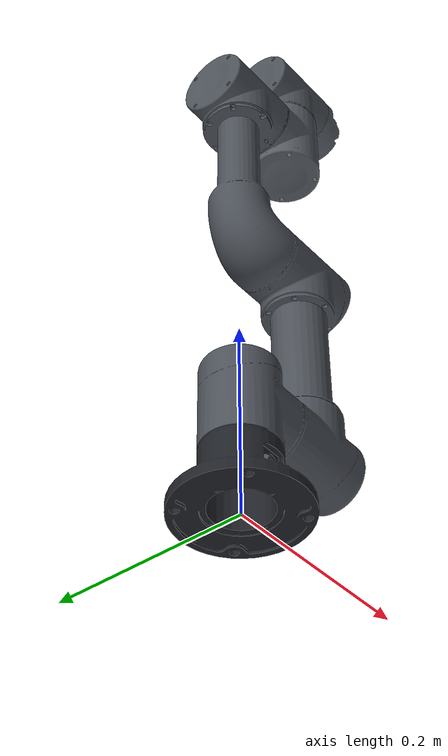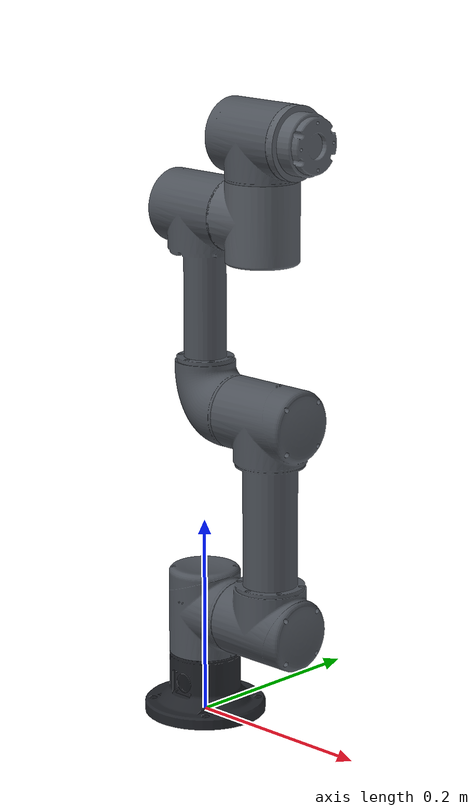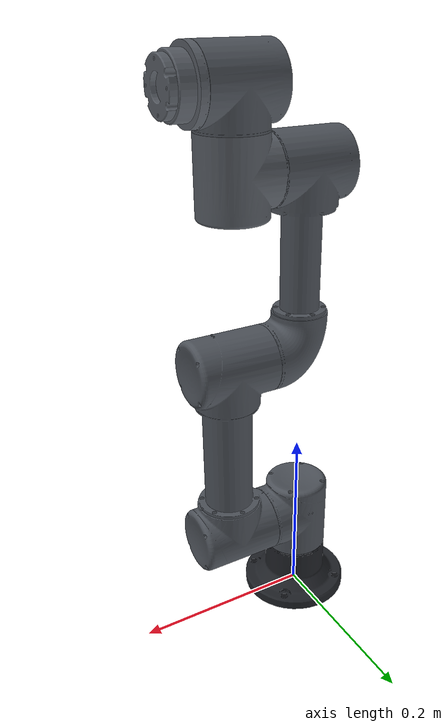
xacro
<?xml version="1.0"?>
<robot xmlns:xacro="http://www.ros.org/wiki/xacro" name="robot_arm">
    <xacro:arg name="initial_positions_file" default="initial_positions.yaml" />
    <xacro:arg name="use_fake_hardware" default="true" />
    <xacro:arg name="backend_mode" default="fake" />
    <xacro:arg name="joint_mapping_path" default="" />
    <xacro:arg name="auto_enable_on_activate" default="false" />
    <xacro:arg name="auto_enable_delay_sec" default="1.0" />

    <xacro:include filename="robot_arm.runtime.urdf" />

    <!-- Import control_xacro -->
    <xacro:include filename="robot_arm.ros2_control.xacro" />

    <xacro:robot_arm_ros2_control
      name="RobotArmSystem"
      initial_positions_file="$(arg initial_positions_file)"
      use_fake_hardware="$(arg use_fake_hardware)"
      backend_mode="$(arg backend_mode)"
      joint_mapping_path="$(arg joint_mapping_path)"
      auto_enable_on_activate="$(arg auto_enable_on_activate)"
      auto_enable_delay_sec="$(arg auto_enable_delay_sec)"/>

</robot>

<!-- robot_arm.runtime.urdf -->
<robot name="robot_arm">
    <link name="world" />
    <joint name="fixed" type="fixed">
        <parent link="world" />
        <child link="base_link" />
    </joint>
    <link name="base_link">
        <inertial>
            <origin xyz="-0.000379135468760089 0.00044051065817062 0.025023985175857" rpy="0 0 0" />
            <mass value="0.195490498054091" />
            <inertia ixx="0.000197098942378015" ixy="1.73544380326031E-08" ixz="-1.8002259724736E-07" iyy="0.00020115978920217" iyz="-2.1699799937825E-06" izz="0.000316589137651227" />
        </inertial>
        <visual>
            <origin xyz="0 0 0" rpy="0 0 0" />
            <geometry>
                <mesh filename="package://robot_arm_description_4338/meshes/base_link.STL" />
            </geometry>
            <material name="base_dark">
                <color rgba="0.13 0.14 0.16 1.0" />
            </material>
        </visual>
        <collision>
            <origin xyz="0 0 0" rpy="0 0 0" />
            <geometry>
                <mesh filename="package://robot_arm_description_4338/meshes/base_link.STL" />
            </geometry>
        </collision>
    </link>
    <link name="link_1">
        <inertial>
            <origin xyz="0.00458971266849917 -3.20046849174062E-05 0.0425574520928825" rpy="0 0 0" />
            <mass value="0.31284736542166" />
            <inertia ixx="0.000154646806877315" ixy="4.09236809944852E-09" ixz="-8.1373895526861E-06" iyy="0.000137640315457541" iyz="-1.10068804835806E-08" izz="0.000167440749331112" />
        </inertial>
        <visual>
            <origin xyz="0 0 0" rpy="0 0 0" />
            <geometry>
                <mesh filename="package://robot_arm_description_4338/meshes/link_1.STL" />
            </geometry>
            <material name="gunmetal_main">
                <color rgba="0.31 0.33 0.36 1.0" />
            </material>
        </visual>
        <collision>
            <origin xyz="0 0 0" rpy="0 0 0" />
            <geometry>
                <mesh filename="package://robot_arm_description_4338/meshes/link_1.STL" />
            </geometry>
        </collision>
    </link>
    <joint name="joint_1" type="revolute">
        <origin xyz="0 0 0.063" rpy="0 0 0" />
        <parent link="base_link" />
        <child link="link_1" />
        <axis xyz="0 0 -1" />
        <limit lower="-3.14" upper="3.14" effort="100" velocity="100" />
    </joint>
    <link name="link_2">
        <inertial>
            <origin xyz="0.0437291888718274 -3.17241634150665E-05 0.121342621403178" rpy="0 0 0" />
            <mass value="0.587907106128444" />
            <inertia ixx="0.000432111071621861" ixy="3.77302870663473E-09" ixz="-5.21839747889797E-10" iyy="0.000377843479563513" iyz="-1.33160548801769E-08" izz="0.000325262257620724" />
        </inertial>
        <visual>
            <origin xyz="0 0 0" rpy="0 0 0" />
            <geometry>
                <mesh filename="package://robot_arm_description_4338/meshes/link_2.STL" />
            </geometry>
            <material name="gunmetal_main">
                <color rgba="0.31 0.33 0.36 1.0" />
            </material>
        </visual>
        <collision>
            <origin xyz="0 0 0" rpy="0 0 0" />
            <geometry>
                <mesh filename="package://robot_arm_description_4338/meshes/link_2.STL" />
            </geometry>
        </collision>
    </link>
    <joint name="joint_2" type="revolute">
        <origin xyz="0.044 0 0.0465" rpy="0 0 0" />
        <parent link="link_1" />
        <child link="link_2" />
        <axis xyz="-1 0 0" />
        <limit lower="-1.6" upper="1.6" effort="100" velocity="100" />
    </joint>
    <link name="link_3">
        <inertial>
            <origin xyz="-0.0342625302290131 -8.54393827617872E-07 0.130570556496791" rpy="0 0 0" />
            <mass value="0.368301492556341" />
            <inertia ixx="0.000284350975876608" ixy="1.99589868481762E-09" ixz="2.06902979779557E-06" iyy="0.000231576501898137" iyz="-3.41441474085351E-08" izz="0.00020347402203542" />
        </inertial>
        <visual>
            <origin xyz="0 0 0" rpy="0 0 0" />
            <geometry>
                <mesh filename="package://robot_arm_description_4338/meshes/link_3.STL" />
            </geometry>
            <material name="gunmetal_main">
                <color rgba="0.31 0.33 0.36 1.0" />
            </material>
        </visual>
        <collision>
            <origin xyz="0 0 0" rpy="0 0 0" />
            <geometry>
                <mesh filename="package://robot_arm_description_4338/meshes/link_3.STL" />
            </geometry>
        </collision>
    </link>
    <joint name="joint_3" type="revolute">
        <origin xyz="0 0 0.211" rpy="0 0 0" />
        <parent link="link_2" />
        <child link="link_3" />
        <axis xyz="-1 0 0" />
        <limit lower="-3.14" upper="3.14" effort="100" velocity="100" />
    </joint>
    <link name="link_4">
        <inertial>
            <origin xyz="0.0279097628469686 1.05492889386494E-06 0.000741999532285043" rpy="0 0 0" />
            <mass value="0.229125165376225" />
            <inertia ixx="0.000131116825625379" ixy="2.407566633754E-08" ixz="-5.24425161186352E-06" iyy="0.000108737830933017" iyz="-5.32181525503191E-10" izz="0.000136962636362692" />
        </inertial>
        <visual>
            <origin xyz="0 0 0" rpy="0 0 0" />
            <geometry>
                <mesh filename="package://robot_arm_description_4338/meshes/link_4.STL" />
            </geometry>
            <material name="soft_titanium">
                <color rgba="0.35 0.37 0.40 1.0" />
            </material>
        </visual>
        <collision>
            <origin xyz="0 0 0" rpy="0 0 0" />
            <geometry>
                <mesh filename="package://robot_arm_description_4338/meshes/link_4.STL" />
            </geometry>
        </collision>
    </link>
    <joint name="joint_4" type="revolute">
        <origin xyz="-0.0041003 0 0.1945" rpy="0 0 0" />
        <parent link="link_3" />
        <child link="link_4" />
        <axis xyz="1 0 0" />
        <limit lower="-3.14" upper="3.14" effort="100" velocity="100" />
    </joint>
    <link name="link_5">
        <inertial>
            <origin xyz="0.000517900737938733 4.3776640414793E-05 0.032331216650774" rpy="0 0 0" />
            <mass value="0.199706758026391" />
            <inertia ixx="0.000126934835025011" ixy="-9.48676769820221E-09" ixz="-5.09905639766148E-06" iyy="9.85451693816129E-05" iyz="-1.08669959041328E-07" izz="0.000113330240712783" />
        </inertial>
        <visual>
            <origin xyz="0 0 0" rpy="0 0 0" />
            <geometry>
                <mesh filename="package://robot_arm_description_4338/meshes/link_5.STL" />
            </geometry>
            <material name="gunmetal_main">
                <color rgba="0.31 0.33 0.36 1.0" />
            </material>
        </visual>
        <collision>
            <origin xyz="0 0 0" rpy="0 0 0" />
            <geometry>
                <mesh filename="package://robot_arm_description_4338/meshes/link_5.STL" />
            </geometry>
        </collision>
    </link>
    <joint name="joint_5" type="revolute">
        <origin xyz="0.0396 0 0.0379" rpy="0 0 0" />
        <parent link="link_4" />
        <child link="link_5" />
        <axis xyz="0 0 1" />
        <limit lower="-3.14" upper="3.14" effort="100" velocity="100" />
    </joint>
    <link name="link_6">
        <inertial>
            <origin xyz="0.0093015 -8.3655E-07 0.001069" rpy="0 0 0" />
            <mass value="0.060816" />
            <inertia ixx="3.898E-05" ixy="3.5762E-10" ixz="-1.8499E-07" iyy="2.3062E-05" iyz="9.6148E-10" izz="2.3064E-05" />
        </inertial>
        <visual>
            <origin xyz="0 0 0" rpy="0 0 0" />
            <geometry>
                <mesh filename="package://robot_arm_description_4338/meshes/link_6.STL" />
            </geometry>
            <material name="soft_titanium">
                <color rgba="0.35 0.37 0.40 1.0" />
            </material>
        </visual>
        <collision>
            <origin xyz="0 0 0" rpy="0 0 0" />
            <geometry>
                <mesh filename="package://robot_arm_description_4338/meshes/link_6.STL" />
            </geometry>
        </collision>
    </link>
    <joint name="joint_6" type="revolute">
        <origin xyz="0.0379 0 0.0396" rpy="0 0 0" />
        <parent link="link_5" />
        <child link="link_6" />
        <axis xyz="1 0 0" />
        <limit lower="-3.14" upper="3.14" effort="100" velocity="100" />
    </joint>
    <transmission name="trans_joint_1">
        <type>transmission_interface/SimpleTransmission</type>
        <joint name="joint_1">
            <hardwareInterface>hardware_interface/PositionJointInterface</hardwareInterface>
        </joint>
        <actuator name="joint_1_motor">
            <hardwareInterface>hardware_interface/PositionJointInterface</hardwareInterface>
            <mechanicalReduction>1</mechanicalReduction>
        </actuator>
    </transmission>
    <transmission name="trans_joint_2">
        <type>transmission_interface/SimpleTransmission</type>
        <joint name="joint_2">
            <hardwareInterface>hardware_interface/PositionJointInterface</hardwareInterface>
        </joint>
        <actuator name="joint_2_motor">
            <hardwareInterface>hardware_interface/PositionJointInterface</hardwareInterface>
            <mechanicalReduction>1</mechanicalReduction>
        </actuator>
    </transmission>
    <transmission name="trans_joint_3">
        <type>transmission_interface/SimpleTransmission</type>
        <joint name="joint_3">
            <hardwareInterface>hardware_interface/PositionJointInterface</hardwareInterface>
        </joint>
        <actuator name="joint_3_motor">
            <hardwareInterface>hardware_interface/PositionJointInterface</hardwareInterface>
            <mechanicalReduction>1</mechanicalReduction>
        </actuator>
    </transmission>
    <transmission name="trans_joint_4">
        <type>transmission_interface/SimpleTransmission</type>
        <joint name="joint_4">
            <hardwareInterface>hardware_interface/PositionJointInterface</hardwareInterface>
        </joint>
        <actuator name="joint_4_motor">
            <hardwareInterface>hardware_interface/PositionJointInterface</hardwareInterface>
            <mechanicalReduction>1</mechanicalReduction>
        </actuator>
    </transmission>
    <transmission name="trans_joint_5">
        <type>transmission_interface/SimpleTransmission</type>
        <joint name="joint_5">
            <hardwareInterface>hardware_interface/PositionJointInterface</hardwareInterface>
        </joint>
        <actuator name="joint_5_motor">
            <hardwareInterface>hardware_interface/PositionJointInterface</hardwareInterface>
            <mechanicalReduction>1</mechanicalReduction>
        </actuator>
    </transmission>
    <transmission name="trans_joint_6">
        <type>transmission_interface/SimpleTransmission</type>
        <joint name="joint_6">
            <hardwareInterface>hardware_interface/PositionJointInterface</hardwareInterface>
        </joint>
        <actuator name="joint_6_motor">
            <hardwareInterface>hardware_interface/PositionJointInterface</hardwareInterface>
            <mechanicalReduction>1</mechanicalReduction>
        </actuator>
    </transmission>
</robot>
